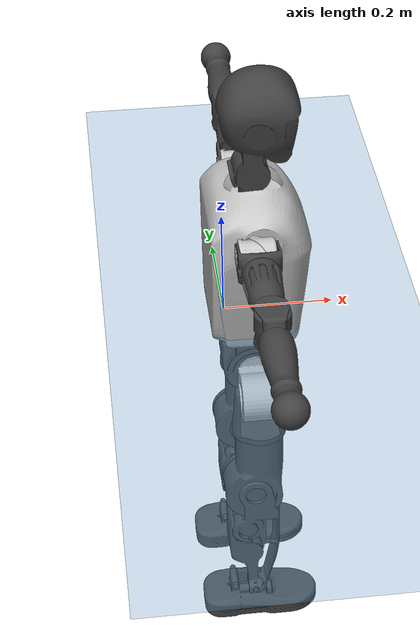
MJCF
<mujoco model="T1">
  <compiler angle="radian" assetdir="assets" balanceinertia="true" inertiafromgeom="false"/>

  <option timestep="0.005" density="1.2" viscosity="2e-05"/>

  <size nkey="1"/>

  <visual>
    <quality shadowsize="8192"/>
    <map shadowclip="0.5"/>
  </visual>

  <default>
    <default class="/">
      <joint armature="0.01" damping="0.01" frictionloss="0.1"/>
      <geom contype="0" conaffinity="0" group="1" solref="-1000 -80"/>
      <site size="0.01 0.005 0.005" group="5"/>
      <general forcelimited="true" biastype="affine" gainprm="25" biasprm="0 -25 -0.6"/>
      <default class="t1">
        <geom rgba="0.25 0.25 0.25 1"/>
        <default class="visual">
          <geom type="mesh" group="2"/>
        </default>
        <default class="collision">
          <geom group="3"/>
        </default>
        <default class="foot">
          <geom size="0.1115 0.05 0.015" type="box" condim="6" group="4" priority="1" solimp="0.015 1 0.015"/>
        </default>
        <default class="reward_collision_sphere">
          <geom group="5" rgba="1 0 0 1"/>
        </default>
      </default>
    </default>
  </default>

  <asset>
    <texture type="skybox" colorspace="auto" name="//unnamed_texture_0" builtin="gradient" rgb1="0.95 0.95 0.95" rgb2="0.95 0.95 0.95" width="100" height="600"/>
    <texture type="2d" colorspace="auto" name="texplane" builtin="checker" rgb1="0.345 0.575 0.748" rgb2="0.345 0.575 0.748" markrgb="1 1 1" width="512" height="512"/>
    <material name="MatPlane" class="/" texture="texplane" texuniform="true" texrepeat="2 2" specular="0.9"/>
    <mesh name="Trunk" class="/" file="Trunk.stl"/>
    <mesh name="H1" class="/" file="H1.stl"/>
    <mesh name="H2" class="/" file="H2.stl"/>
    <mesh name="AL1" class="/" file="AL1.stl"/>
    <mesh name="AL2" class="/" file="AL2.stl"/>
    <mesh name="AL3" class="/" file="AL3.stl"/>
    <mesh name="left_hand_link" class="/" file="left_hand_link.stl"/>
    <mesh name="AR1" class="/" file="AR1.stl"/>
    <mesh name="AR2" class="/" file="AR2.stl"/>
    <mesh name="AR3" class="/" file="AR3.stl"/>
    <mesh name="right_hand_link" class="/" file="right_hand_link.stl"/>
    <mesh name="Waist" class="/" file="Waist.stl"/>
    <mesh name="Hip_Pitch_Left" class="/" file="Hip_Pitch_Left.stl"/>
    <mesh name="Hip_Roll_Left" class="/" file="Hip_Roll_Left.stl"/>
    <mesh name="Hip_Yaw_Left" class="/" file="Hip_Yaw_Left.stl"/>
    <mesh name="Shank_Left" class="/" file="Shank_Left.stl"/>
    <mesh name="Ankle_Cross_Left" class="/" file="Ankle_Cross_Left.stl"/>
    <mesh name="left_foot_link" class="/" file="left_foot_link.stl"/>
    <mesh name="Hip_Pitch_Right" class="/" file="Hip_Pitch_Right.stl"/>
    <mesh name="Hip_Roll_Right" class="/" file="Hip_Roll_Right.stl"/>
    <mesh name="Hip_Yaw_Right" class="/" file="Hip_Yaw_Right.stl"/>
    <mesh name="Shank_Right" class="/" file="Shank_Right.stl"/>
    <mesh name="Ankle_Cross_Right" class="/" file="Ankle_Cross_Right.stl"/>
    <mesh name="right_foot_link" class="/" file="right_foot_link.stl"/>
  </asset>

  <worldbody>
    <geom name="floor" class="/" size="100 100 0.125" type="plane" group="0" material="MatPlane"/>
    <light name="toplight_shadow" class="/" pos="0 0 5" dir="0.0990148 0.0990148 -0.990148" type="directional" ambient="0.04 0.04 0.04" diffuse="0.55 0.55 0.55" specular="0.12 0.12 0.12"/>
    <light name="toplight_fill" class="/" pos="0 0 5" dir="0.0990148 0.0990148 -0.990148" type="directional" castshadow="false" ambient="0.04 0.04 0.04" diffuse="0.3 0.3 0.3" specular="0.08 0.08 0.08"/>
    <body name="trunk" childclass="t1" pos="0.000542016 9.51556e-05 0.000874893" quat="1 0.000142762 0.00035417 0.000248613">
      <inertial pos="0.0441236 -0.00215032 0.101217" quat="0.999961 0.000345653 -0.00882573 -0.000330584" mass="8.86183" diaginertia="0.0337725 0.0576965 0.0472195"/>
      <joint name="//unnamed_joint_0" type="free" armature="0" damping="0" frictionloss="0"/>
      <geom name="//unnamed_geom_1" class="visual" rgba="0.76 0.76 0.76 1" mesh="Trunk"/>
      <geom name="//unnamed_geom_2" class="collision" size="0.0682433 0.0909911 0.136487" pos="0.0490138 0 0.116447" type="box"/>
      <geom name="//unnamed_geom_3" class="reward_collision_sphere" size="0.10464" pos="0.0490138 0 0.0970389"/>
      <geom name="//unnamed_geom_4" class="reward_collision_sphere" size="0.0136487" pos="0.0490138 0.0801081 0"/>
      <geom name="//unnamed_geom_5" class="reward_collision_sphere" size="0.0136487" pos="0.0490138 -0.0801081 0"/>
      <geom name="//unnamed_geom_6" class="reward_collision_sphere" size="0.0136487" pos="0.0490138 0.100842 0.17467"/>
      <geom name="//unnamed_geom_7" class="reward_collision_sphere" size="0.0136487" pos="0.0490138 -0.100842 0.17467"/>
      <site name="imu" pos="-0.012275 0.0125919 -0.0120567" size="0.00909911"/>
      <camera name="track" pos="0 -1.8849 0" quat="0.707107 0.707107 0 0" mode="trackcom"/>
      <camera name="ego_camera" pos="0.0996614 0 0.407563" quat="-0.5 -0.5 0.5 0.5"/>
      <body name="H1" pos="0.0505489 0.000595036 0.2364" quat="0.999999 -0.000633469 -0.00101157 -0.000314125">
        <inertial pos="-0.00112137 -0.000925314 0.0547283" quat="0.763184 -0.0140602 0.00169704 0.646026" mass="0.354141" diaginertia="8.84256e-05 0.000168239 0.000132472"/>
        <joint name="AAHead_yaw" pos="0 0 0" axis="-0.00145939 0.000482752 0.999999" range="-1.58015 1.56693" armature="0.0103279" damping="0" frictionloss="0.0896672"/>
        <geom name="//unnamed_geom_8" class="visual" mesh="H1"/>
        <body name="H2" pos="0.00207133 -0.000763302 0.0597296" quat="1 2.19564e-05 -5.87959e-05 -0.000102045">
          <inertial pos="0.00548068 0.0011799 0.0951678" quat="0.988357 0.105582 -0.0770073 -0.0779246" mass="0.479879" diaginertia="0.000740418 0.00141795 0.00148081"/>
          <joint name="Head_pitch" pos="0 0 0" axis="0.00565555 -0.999981 0.00243764" range="-1.21027 0.342688" armature="0.00866345" damping="0.00368019" frictionloss="0.0907538"/>
          <geom name="//unnamed_geom_9" class="visual" mesh="H2"/>
          <geom name="//unnamed_geom_10" class="collision" size="0.0727929" pos="0.00816897 0 0.106743"/>
          <geom name="//unnamed_geom_11" class="reward_collision_sphere" size="0.081892" pos="0.0163379 0 0.0970389"/>
        </body>
      </body>
      <body name="AL1" pos="0.0463669 0.100063 0.21157" quat="1 0.000204083 -0.00032311 0.000164655">
        <inertial pos="-0.000491483 0.0439542 -0.000214523" quat="0.504111 0.4971 -0.503163 0.495572" mass="0.402103" diaginertia="0.000500287 0.000972738 0.00025459"/>
        <joint name="Left_Shoulder_Pitch" pos="0 0 0" axis="0.000883023 0.999998 -0.00166697" range="-3.32152 1.21271" armature="0.00957823" damping="0.0117606" frictionloss="0.0882142"/>
        <geom name="//unnamed_geom_12" class="visual" rgba="0.76 0.76 0.76 1" mesh="AL1"/>
        <body name="AL2" pos="0.000578904 0.0443315 -2.68613e-05" quat="1 -8.46275e-05 -2.49525e-05 -0.000143142">
          <inertial pos="0.0031223 0.036633 0.00182943" quat="0.489409 0.510598 -0.486535 0.512887" mass="0.125133" diaginertia="0.000147966 0.000252419 0.000153527"/>
          <joint name="Left_Shoulder_Roll" pos="0 0 0" axis="-1 -8.11998e-05 0.000631769" range="-1.52369 1.78862" armature="0.00808672" damping="0.00170452" frictionloss="0.0905759"/>
          <geom name="//unnamed_geom_13" class="visual" mesh="AL2"/>
          <body name="AL3" pos="0.00215954 0.0571919 -0.00127368" quat="1 4.54421e-05 0.000117952 -7.20445e-05">
            <inertial pos="0.000560633 0.0804317 -8.50651e-05" quat="0.705868 0.708342 -0.000881468 0.000666045" mass="0.779295" diaginertia="0.00467363 0.00972196 0.00052374"/>
            <joint name="Left_Elbow_Pitch" pos="0 0 0" axis="0.00100699 -0.999918 0.012766" range="-2.22372 2.30256" armature="0.00790985" damping="0.00348853" frictionloss="0.0857241"/>
            <geom name="//unnamed_geom_14" class="visual" mesh="AL3"/>
            <geom name="//unnamed_geom_15" class="collision" size="0.0272973 0.0682433" pos="0 0.0471224 0" quat="0.707105 0.707108 0 0" type="cylinder"/>
            <geom name="//unnamed_geom_16" class="reward_collision_sphere" size="0.0327568"/>
            <body name="left_hand_link" pos="-0.000592225 0.14036 0.00191726" quat="1 -0.000103049 0.00010031 -0.000231602">
              <inertial pos="-0.000771182 0.102877 0.000285946" quat="0.708002 0.706211 6.93506e-06 -0.000320393" mass="0.244592" diaginertia="0.00301326 0.00615002 0.000182984"/>
              <joint name="Left_Elbow_Yaw" pos="0 0 0" axis="0.00100577 0.00084764 0.999999" range="-2.4347 0.0113627" armature="0.0102956" damping="0.0157312" frictionloss="0.0897006"/>
              <geom name="//unnamed_geom_17" class="visual" mesh="left_hand_link"/>
              <geom name="//unnamed_geom_18" class="collision" size="0.0272973 0.0796172" pos="0 0.122518 0" quat="0.707105 0.707108 0 0" type="cylinder"/>
              <geom name="//unnamed_geom_19" class="reward_collision_sphere" size="0.0454956"/>
              <geom name="//unnamed_geom_20" class="reward_collision_sphere" size="0.0318469" pos="0 0.103669 0"/>
              <geom name="//unnamed_geom_21" class="reward_collision_sphere" size="0.0318469" pos="0 0.202626 0"/>
            </body>
          </body>
        </body>
      </body>
      <body name="AR1" pos="0.0446767 -0.0986337 0.212759" quat="1 0.00010679 0.000433679 -2.66724e-05">
        <inertial pos="-0.00333208 -0.0435499 0.00104716" quat="0.499519 0.487656 -0.511277 0.501267" mass="0.400775" diaginertia="0.000501482 0.00096897 0.000261024"/>
        <joint name="Right_Shoulder_Pitch" pos="0 0 0" axis="-0.00213064 -0.999992 -0.00335464" stiffness="0.00563349" range="-1.22407 3.31287" armature="0.00917515" damping="0.00744106" frictionloss="0.0859119"/>
        <geom name="//unnamed_geom_22" class="visual" rgba="0.76 0.76 0.76 1" mesh="AR1"/>
        <body name="AR2" pos="0.000383365 -0.0422702 -0.000170318" quat="1 -0.00054708 0.000260366 -0.000278901">
          <inertial pos="0.00196873 -0.0358324 0.000523722" quat="0.511682 0.487813 -0.512264 0.487653" mass="0.119868" diaginertia="0.000146932 0.00026404 0.000152434"/>
          <joint name="Right_Shoulder_Roll" pos="0 0 0" axis="-0.999965 -0.00251568 0.00799241" range="-1.73874 1.62206" armature="0.00850728" damping="0.0111478" frictionloss="0.0895166"/>
          <geom name="//unnamed_geom_23" class="visual" mesh="AR2"/>
          <body name="AR3" pos="-0.000486481 -0.0565022 -0.00146896" quat="1 3.05956e-06 2.82226e-06 2.35606e-05">
            <inertial pos="-0.000333782 -0.0829421 0.00186911" quat="0.704481 0.70971 0.00165623 0.00395405" mass="0.756577" diaginertia="0.00464934 0.00932879 0.000542793"/>
            <joint name="Right_Elbow_Pitch" pos="0 0 0" axis="0.00137977 0.999999 -0.000683567" range="-2.26205 2.24297" armature="0.00919012" damping="0.0166288" frictionloss="0.090331"/>
            <geom name="//unnamed_geom_24" class="visual" mesh="AR3"/>
            <geom name="//unnamed_geom_25" class="collision" size="0.0272973 0.0682433" pos="0 -0.0471224 0" quat="0.707105 0.707108 0 0" type="cylinder"/>
            <geom name="//unnamed_geom_26" class="reward_collision_sphere" size="0.0327568"/>
            <body name="right_hand_link" pos="-6.7648e-05 -0.138049 0.000149308" quat="1 -2.14764e-05 -8.05071e-05 -9.20371e-05">
              <inertial pos="-0.000954714 -0.102526 -0.000519862" quat="0.707019 0.707193 0.000853544 -0.00137572" mass="0.250017" diaginertia="0.00293871 0.00606339 0.000182807"/>
              <joint name="Right_Elbow_Yaw" pos="0 0 0" axis="-0.000824936 -0.000427535 1" range="-0.00455967 2.43854" armature="0.00903077" damping="0.00854868" frictionloss="0.0950978"/>
              <geom name="//unnamed_geom_27" class="visual" mesh="right_hand_link"/>
              <geom name="//unnamed_geom_28" class="collision" size="0.0272973 0.0796172" pos="0 -0.122518 0" quat="0.707105 0.707108 0 0" type="cylinder"/>
              <geom name="//unnamed_geom_29" class="reward_collision_sphere" size="0.0454956"/>
              <geom name="//unnamed_geom_30" class="reward_collision_sphere" size="0.0318469" pos="0 -0.103669 0"/>
              <geom name="//unnamed_geom_31" class="reward_collision_sphere" size="0.0318469" pos="0 -0.202626 0"/>
            </body>
          </body>
        </body>
      </body>
      <body name="Waist" pos="0.0530595 -0.00190997 -0.112108" quat="1 -0.000127601 -0.000367128 0.000200992">
        <inertial pos="-0.00105934 0.000260313 0.00727216" quat="0.983769 7.53194e-06 -0.179393 0.00397902" mass="1.99459" diaginertia="0.00191345 0.00403907 0.00411832"/>
        <joint name="Waist" pos="0 0 0" axis="0.00903216 0.00689687 0.999935" range="-1.59234 1.58972" armature="0.00924756" damping="0.0258837" frictionloss="0.0919925"/>
        <geom name="//unnamed_geom_32" class="visual" mesh="Waist"/>
        <body name="Hip_Pitch_Left" pos="-0.00168111 0.100953 0.000788135" quat="0.999999 0.00149962 -0.000102436 0.000300986">
          <inertial pos="-0.000605961 -0.00473748 -0.018343" quat="0.975191 0.220908 0.0136924 0.00371019" mass="0.741491" diaginertia="0.000634796 0.00106365 0.00107669"/>
          <joint name="Left_Hip_Pitch" pos="0 0 0" axis="0.00600002 0.999982 0.00023158" range="-1.77684 1.57969" armature="0.00834503" damping="0.00901796" frictionloss="0.102548"/>
          <geom name="//unnamed_geom_33" class="visual" rgba="0.76 0.76 0.76 1" mesh="Hip_Pitch_Left"/>
          <body name="Hip_Roll_Left" pos="0.00300572 0.00040378 -0.0223104" quat="1 -0.00077291 0.000280652 0.000564975">
            <inertial pos="0.00189907 0.000454491 -0.0545012" quat="0.707035 -0.00598018 -0.00747924 0.707114" mass="0.283791" diaginertia="0.000630415 0.0011203 0.000437578"/>
            <joint name="Left_Hip_Roll" pos="0 0 0" axis="-0.999994 0.00244262 -0.00256803" range="-1.56751 0.207516" armature="0.00953941" damping="0.0184983" frictionloss="0.0905886"/>
            <geom name="//unnamed_geom_34" class="visual" mesh="Hip_Roll_Left"/>
            <geom name="//unnamed_geom_35" class="reward_collision_sphere" size="0.0500451"/>
            <body name="Hip_Yaw_Left" pos="0.000510199 -0.000509444 -0.0795984" quat="1 -0.000287543 -0.000163423 9.9369e-05">
              <inertial pos="-0.00474765 0.00205907 -0.0843051" quat="0.695483 -0.0374412 -0.0280899 0.717016" mass="1.62936" diaginertia="0.00938196 0.0188519 0.00222279"/>
              <joint name="Left_Hip_Yaw" pos="0 0 0" axis="0.00522255 -0.00488396 -0.999974" range="-1.01671 1.00119" armature="0.00918739" damping="0.010842" frictionloss="0.0946956"/>
              <geom name="//unnamed_geom_36" class="visual" mesh="Hip_Yaw_Left"/>
              <geom name="//unnamed_geom_37" class="collision" size="0.0454956 0.0727929" type="cylinder"/>
              <body name="Shank_Left" pos="-0.00902218 -0.00085055 -0.130781" quat="1 -0.000300777 -0.000689046 9.58742e-05">
                <inertial pos="-0.00533554 0.000220261 -0.121479" quat="0.996964 0.00182246 -0.018948 0.0754951" mass="1.32858" diaginertia="0.0127354 0.0259852 0.00161579"/>
                <joint name="Left_Knee_Pitch" pos="0 0 0" axis="-0.0025023 0.999994 -0.00231404" range="-0.00163872 2.29999" armature="0.00977973" damping="0.0059991" frictionloss="0.0914085"/>
                <geom name="//unnamed_geom_38" class="visual" mesh="Shank_Left"/>
                <geom name="//unnamed_geom_39" class="collision" size="0.0454956 0.0682433" pos="0 0 -0.116447" type="cylinder"/>
                <geom name="//unnamed_geom_40" class="reward_collision_sphere" size="0.0591442"/>
                <body name="Ankle_Cross_Left" pos="-0.000286846 -0.00167894 -0.271646" quat="1 -1.74692e-05 0.000127899 -8.81099e-05">
                  <inertial pos="-0.00305491 0.000626891 -0.00881983" quat="0.438513 0.553532 0.554754 0.439951" mass="0.0539878" diaginertia="1.06244e-05 1.88237e-05 9.65439e-06"/>
                  <joint name="Left_Ankle_Pitch" pos="0 0 0" axis="-0.00170204 0.999997 0.00199182" stiffness="0.00274114" range="-0.920008 0.39891" armature="0.00930061" damping="0" frictionloss="0.0929677"/>
                  <geom name="//unnamed_geom_41" class="visual" mesh="Ankle_Cross_Left"/>
                  <body name="left_foot_link" pos="-0.0012551 0.000290938 -0.0140957" quat="0.999999 -0.000231742 -0.00122684 0.000375165">
                    <inertial pos="0.00100218 -0.00103078 -0.00838477" quat="0.0045714 0.616234 -0.00338014 0.787543" mass="0.53073" diaginertia="0.00101966 0.00183964 0.00200639"/>
                    <joint name="Left_Ankle_Roll" pos="0 0 0" axis="-0.999984 0.000855511 0.00565169" stiffness="0.00481064" range="-0.44122 0.491438" armature="0.00923661" damping="0.0112559" frictionloss="0.102832"/>
                    <geom name="//unnamed_geom_42" class="visual" mesh="left_foot_link"/>
                    <geom name="left_foot" class="foot" size="0.105867 0.042249 0.0150676" pos="0.00816897 0 -0.0145558"/>
                    <geom name="//unnamed_geom_44" class="reward_collision_sphere" size="0.0473154" pos="0.00816897 0 -0.0145558"/>
                    <geom name="//unnamed_geom_45" class="reward_collision_sphere" size="0.0272973" pos="0.0776052 -0.0216763 -0.0145558"/>
                    <geom name="//unnamed_geom_46" class="reward_collision_sphere" size="0.0272973" pos="-0.0571828 -0.0216763 -0.0145558"/>
                    <site name="left_foot" class="foot" pos="0.00816897 0 -0.0145558" size="0.00909911"/>
                  </body>
                </body>
              </body>
            </body>
          </body>
        </body>
        <body name="Hip_Pitch_Right" pos="7.92091e-05 -0.0997166 -0.000108523" quat="1 5.7501e-06 -3.02192e-06 -2.02624e-05">
          <inertial pos="0.00132614 0.0069475 -0.017019" quat="0.974687 -0.222026 0.0256049 -0.00579368" mass="0.751303" diaginertia="0.000635191 0.00105156 0.00105268"/>
          <joint name="Right_Hip_Pitch" pos="0 0 0" axis="-0.00145087 -0.999999 -0.000304997" stiffness="0.00240009" range="-1.56025 1.79392" armature="0.00881312" damping="0.00813882" frictionloss="0.0895288"/>
          <geom name="//unnamed_geom_47" class="visual" rgba="0.76 0.76 0.76 1" mesh="Hip_Pitch_Right"/>
          <body name="Hip_Roll_Right" pos="0.00121253 0.000458949 -0.0216517" quat="1 -6.9349e-05 -0.00022758 -4.36002e-05">
            <inertial pos="0.000940881 -5.12874e-06 -0.0520942" quat="0.706844 -0.0080806 -0.0126631 0.70721" mass="0.280684" diaginertia="0.000630267 0.00112245 0.000426077"/>
            <joint name="Right_Hip_Roll" pos="0 0 0" axis="-0.999999 0.000643132 -0.00154267" stiffness="0.000525014" range="-0.18889 1.5769" armature="0.00898284" damping="0.00810952" frictionloss="0.0894485"/>
            <geom name="//unnamed_geom_48" class="visual" mesh="Hip_Roll_Right"/>
            <geom name="//unnamed_geom_49" class="reward_collision_sphere" size="0.0500451"/>
            <body name="Hip_Yaw_Right" pos="-0.0016754 0.00213867 -0.0799918" quat="1 -0.000177632 -0.000100019 0.000155155">
              <inertial pos="-0.00696614 -0.000671417 -0.0892443" quat="0.718263 -0.0353101 -0.0278026 0.694318" mass="1.66001" diaginertia="0.00933441 0.0186933 0.00221477"/>
              <joint name="Right_Hip_Yaw" pos="0 0 0" axis="0.00013134 -0.0011444 -0.999999" range="-0.962458 0.995412" armature="0.00925913" damping="0.0111991" frictionloss="0.0908304"/>
              <geom name="//unnamed_geom_50" class="visual" mesh="Hip_Yaw_Right"/>
              <geom name="//unnamed_geom_51" class="collision" size="0.0454956 0.0727929" type="cylinder"/>
              <body name="Shank_Right" pos="-0.0114068 0.000853172 -0.128992" quat="1 0.000161586 -8.54683e-06 2.17413e-05">
                <inertial pos="-0.00228746 -0.00130877 -0.11852" quat="0.999379 0.00108043 -0.0142562 -0.032217" mass="1.29849" diaginertia="0.0124843 0.0260419 0.00164787"/>
                <joint name="Right_Knee_Pitch" pos="0 0 0" axis="0.000301552 -0.999996 0.00288068" range="-2.34679 -0.00992376" armature="0.00937183" damping="0" frictionloss="0.098281"/>
                <geom name="//unnamed_geom_52" class="visual" mesh="Shank_Right"/>
                <geom name="//unnamed_geom_53" class="collision" size="0.0454956 0.0682433" pos="0 0 -0.116447" type="cylinder"/>
                <geom name="//unnamed_geom_54" class="reward_collision_sphere" size="0.0591442"/>
                <body name="Ankle_Cross_Right" pos="0.00099695 -0.00334788 -0.271751" quat="0.999999 5.99324e-05 0.00118154 0.000494649">
                  <inertial pos="-0.00211458 0.000385885 -0.00754433" quat="0.442842 0.551795 0.550579 0.44303" mass="0.0553952" diaginertia="1.02788e-05 1.9153e-05 9.89888e-06"/>
                  <joint name="Right_Ankle_Pitch" pos="0 0 0" axis="-0.00415615 -0.999979 -0.00497464" range="-0.346082 0.920193" armature="0.00886074" damping="0.015604" frictionloss="0.0907357"/>
                  <geom name="//unnamed_geom_55" class="visual" mesh="Ankle_Cross_Right"/>
                  <body name="right_foot_link" pos="0.000242295 -0.000973168 -0.0120973" quat="1 5.56107e-05 8.34802e-05 -0.000845396">
                    <inertial pos="-0.00157698 0.000163515 -0.00892541" quat="0.00182971 0.62455 -0.000312209 0.780982" mass="0.515932" diaginertia="0.000950971 0.00175203 0.00190389"/>
                    <joint name="Right_Ankle_Roll" pos="0 0 0" axis="-0.999993 0.00089087 0.00375168" range="-0.433481 0.443246" armature="0.00866124" damping="0.00601695" frictionloss="0.0867845"/>
                    <geom name="//unnamed_geom_56" class="visual" mesh="right_foot_link"/>
                    <geom name="right_foot" class="foot" size="0.102459 0.0435851 0.0138632" pos="0.00816897 0 -0.0145558"/>
                    <geom name="//unnamed_geom_58" class="reward_collision_sphere" size="0.0363965"/>
                    <geom name="//unnamed_geom_59" class="reward_collision_sphere" size="0.0272973" pos="0.00816897 0 -0.0145558"/>
                    <geom name="//unnamed_geom_60" class="reward_collision_sphere" size="0.0272973" pos="0.0776052 0.0216763 -0.0145558"/>
                    <geom name="//unnamed_geom_61" class="reward_collision_sphere" size="0.0272973" pos="-0.0571828 0.0216763 -0.0145558"/>
                    <site name="right_foot" class="foot" pos="0.00816897 0 -0.0145558" size="0.00909911"/>
                  </body>
                </body>
              </body>
            </body>
          </body>
        </body>
      </body>
    </body>
  </worldbody>

  <contact>
    <pair class="/" geom1="floor" geom2="left_foot" name="//unnamed_contact_0"/>
    <pair class="/" geom1="floor" geom2="right_foot" name="//unnamed_contact_1"/>
  </contact>

  <actuator>
    <general name="AAHead_yaw" class="/" joint="AAHead_yaw" forcerange="-6.62121 6.62121" gainprm="21.2661" biasprm="0 -21.2661 -0.539486"/>
    <general name="Head_pitch" class="/" joint="Head_pitch" forcerange="-6.12965 6.12965" gainprm="21.2661" biasprm="0 -21.2661 -0.539486"/>
    <general name="Left_Shoulder_Pitch" class="/" joint="Left_Shoulder_Pitch" forcerange="-16.3731 16.3731" gainprm="21.2661" biasprm="0 -21.2661 -0.539486"/>
    <general name="Left_Shoulder_Roll" class="/" joint="Left_Shoulder_Roll" forcerange="-16.2501 16.2501" gainprm="21.2661" biasprm="0 -21.2661 -0.539486"/>
    <general name="Left_Elbow_Pitch" class="/" joint="Left_Elbow_Pitch" forcerange="-14.8646 14.8646" gainprm="21.2661" biasprm="0 -21.2661 -0.539486"/>
    <general name="Left_Elbow_Yaw" class="/" joint="Left_Elbow_Yaw" forcerange="-17.8441 17.8441" gainprm="21.2661" biasprm="0 -21.2661 -0.539486"/>
    <general name="Right_Shoulder_Pitch" class="/" joint="Right_Shoulder_Pitch" forcerange="-17.9248 17.9248" gainprm="21.2661" biasprm="0 -21.2661 -0.539486"/>
    <general name="Right_Shoulder_Roll" class="/" joint="Right_Shoulder_Roll" forcerange="-16.8295 16.8295" gainprm="21.2661" biasprm="0 -21.2661 -0.539486"/>
    <general name="Right_Elbow_Pitch" class="/" joint="Right_Elbow_Pitch" forcerange="-16.3996 16.3996" gainprm="21.2661" biasprm="0 -21.2661 -0.539486"/>
    <general name="Right_Elbow_Yaw" class="/" joint="Right_Elbow_Yaw" forcerange="-16.1832 16.1832" gainprm="21.2661" biasprm="0 -21.2661 -0.539486"/>
    <general name="Waist" class="/" joint="Waist" forcerange="-26.865 26.865" gainprm="21.2661" biasprm="0 -21.2661 -0.539486"/>
    <general name="Left_Hip_Pitch" class="/" joint="Left_Hip_Pitch" forcerange="-42.0542 42.0542" gainprm="21.2661" biasprm="0 -21.2661 -0.539486"/>
    <general name="Left_Hip_Roll" class="/" joint="Left_Hip_Roll" forcerange="-29.6979 29.6979" gainprm="21.2661" biasprm="0 -21.2661 -0.539486"/>
    <general name="Left_Hip_Yaw" class="/" joint="Left_Hip_Yaw" forcerange="-24.7235 24.7235" gainprm="21.2661" biasprm="0 -21.2661 -0.539486"/>
    <general name="Left_Knee_Pitch" class="/" joint="Left_Knee_Pitch" forcerange="-49.1047 49.1047" gainprm="21.2661" biasprm="0 -21.2661 -0.539486"/>
    <general name="Left_Ankle_Pitch" class="/" joint="Left_Ankle_Pitch" forcerange="-18.0052 18.0052" gainprm="21.2661" biasprm="0 -21.2661 -0.539486"/>
    <general name="Left_Ankle_Roll" class="/" joint="Left_Ankle_Roll" forcerange="-13.6604 13.6604" gainprm="21.2661" biasprm="0 -21.2661 -0.539486"/>
    <general name="Right_Hip_Pitch" class="/" joint="Right_Hip_Pitch" forcerange="-39.4037 39.4037" gainprm="21.2661" biasprm="0 -21.2661 -0.539486"/>
    <general name="Right_Hip_Roll" class="/" joint="Right_Hip_Roll" forcerange="-27.5377 27.5377" gainprm="21.2661" biasprm="0 -21.2661 -0.539486"/>
    <general name="Right_Hip_Yaw" class="/" joint="Right_Hip_Yaw" forcerange="-27.3097 27.3097" gainprm="21.2661" biasprm="0 -21.2661 -0.539486"/>
    <general name="Right_Knee_Pitch" class="/" joint="Right_Knee_Pitch" forcerange="-54.0126 54.0126" gainprm="21.2661" biasprm="0 -21.2661 -0.539486"/>
    <general name="Right_Ankle_Pitch" class="/" joint="Right_Ankle_Pitch" forcerange="-16.821 16.821" gainprm="21.2661" biasprm="0 -21.2661 -0.539486"/>
    <general name="Right_Ankle_Roll" class="/" joint="Right_Ankle_Roll" forcerange="-13.6228 13.6228" gainprm="21.2661" biasprm="0 -21.2661 -0.539486"/>
  </actuator>

  <sensor>
    <gyro site="imu" name="imu_angular_velocity"/>
    <velocimeter site="imu" name="imu_linear_velocity"/>
    <framelinvel objtype="site" objname="left_foot" name="left_foot_global_linear_velocity"/>
    <framelinvel objtype="site" objname="right_foot" name="right_foot_global_linear_velocity"/>
  </sensor>

  <keyframe>
    <key name="home" qpos="0 0 0.6385 1 0 0 0 0 0 0 1.4 0 -0.4 0 -1.4 0 0.4 0 -0.4 0 0 0.8 -0.4 0 0.4 0 0 -0.8 0.4 0"/>
  </keyframe>
</mujoco>
